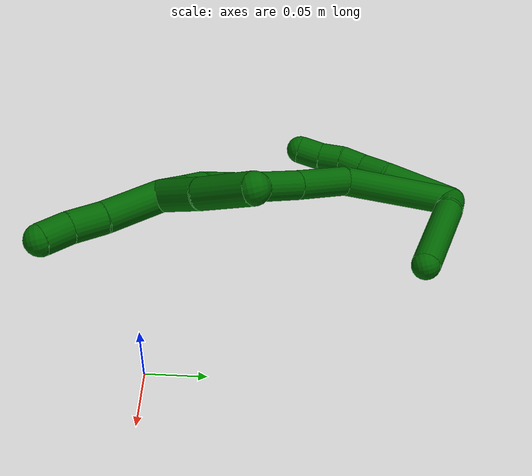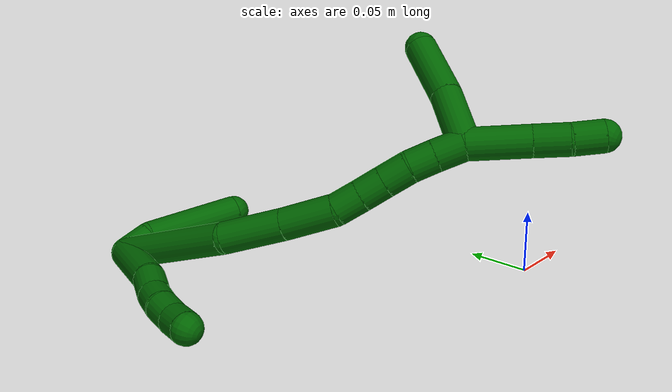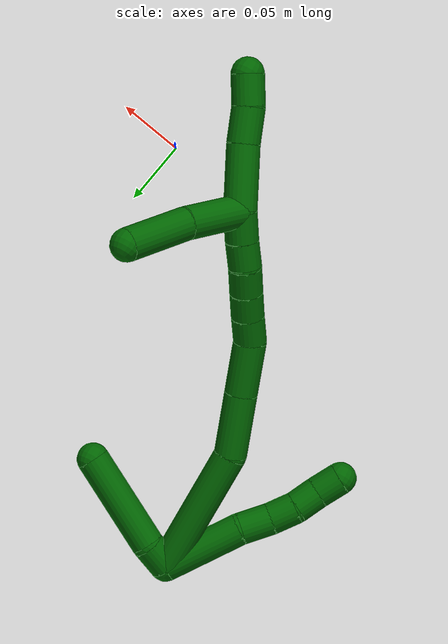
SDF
<sdf version="1.7">
 <world name="default">
  <model name="6">
   <static>0</static>
   <link name="6">
    <collision name="collision-cylinder-e_1_2_8">
     <pose>0.01806 0.007189 0.02486 -0.281494 0.609294 -0.089042</pose>
     <geometry><cylinder><radius>0.0125</radius><length>0.063115</length></cylinder></geometry>
     <surface>
      <friction><ode><mu>1.16</mu><mu2>1.16</mu2><slip1>0</slip1><slip2>0</slip2></ode></friction>
      <contact><ode><kp>1e+06</kp><kd>1</kd><max_vel>0</max_vel><min_depth>0.001</min_depth></ode></contact>
     </surface>
    </collision>
    <visual name="visual-cylinder-e_1_2_8">
     <pose>0.01806 0.007189 0.02486 -0.281494 0.609294 -0.089042</pose>
     <geometry><cylinder><radius>0.0125</radius><length>0.063115</length></cylinder></geometry>
     <material><ambient>0 0.392157 0.003922 1</ambient></material>
    </visual>
    <collision name="collision-cylinder-e_2_8_9">
     <pose>0.042402 0.01989 0.058797 -0.545742 0.53418 -0.152852</pose>
     <geometry><cylinder><radius>0.0125</radius><length>0.024676</length></cylinder></geometry>
     <surface>
      <friction><ode><mu>1.16</mu><mu2>1.16</mu2><slip1>0</slip1><slip2>0</slip2></ode></friction>
      <contact><ode><kp>1e+06</kp><kd>1</kd><max_vel>0</max_vel><min_depth>0.001</min_depth></ode></contact>
     </surface>
    </collision>
    <visual name="visual-cylinder-e_2_8_9">
     <pose>0.042402 0.01989 0.058797 -0.545742 0.53418 -0.152852</pose>
     <geometry><cylinder><radius>0.0125</radius><length>0.024676</length></cylinder></geometry>
     <material><ambient>0 0.392157 0.003922 1</ambient></material>
    </visual>
    <collision name="collision-cylinder-e_3_9_10">
     <pose>0.054729 0.028316 0.076092 -0.340802 0.606254 -0.107531</pose>
     <geometry><cylinder><radius>0.0125</radius><length>0.02122</length></cylinder></geometry>
     <surface>
      <friction><ode><mu>1.16</mu><mu2>1.16</mu2><slip1>0</slip1><slip2>0</slip2></ode></friction>
      <contact><ode><kp>1e+06</kp><kd>1</kd><max_vel>0</max_vel><min_depth>0.001</min_depth></ode></contact>
     </surface>
    </collision>
    <visual name="visual-cylinder-e_3_9_10">
     <pose>0.054729 0.028316 0.076092 -0.340802 0.606254 -0.107531</pose>
     <geometry><cylinder><radius>0.0125</radius><length>0.02122</length></cylinder></geometry>
     <material><ambient>0 0.392157 0.003922 1</ambient></material>
    </visual>
    <collision name="collision-cylinder-e_4_10_11">
     <pose>0.064737 0.033579 0.093316 -0.255078 0.402482 -0.052309</pose>
     <geometry><cylinder><radius>0.0125</radius><length>0.020232</length></cylinder></geometry>
     <surface>
      <friction><ode><mu>1.16</mu><mu2>1.16</mu2><slip1>0</slip1><slip2>0</slip2></ode></friction>
      <contact><ode><kp>1e+06</kp><kd>1</kd><max_vel>0</max_vel><min_depth>0.001</min_depth></ode></contact>
     </surface>
    </collision>
    <visual name="visual-cylinder-e_4_10_11">
     <pose>0.064737 0.033579 0.093316 -0.255078 0.402482 -0.052309</pose>
     <geometry><cylinder><radius>0.0125</radius><length>0.020232</length></cylinder></geometry>
     <material><ambient>0 0.392157 0.003922 1</ambient></material>
    </visual>
    <collision name="collision-cylinder-e_5_11_6">
     <pose>0.07427 0.037404 0.110954 -0.169381 0.566601 -0.04942</pose>
     <geometry><cylinder><radius>0.0125</radius><length>0.020756</length></cylinder></geometry>
     <surface>
      <friction><ode><mu>1.16</mu><mu2>1.16</mu2><slip1>0</slip1><slip2>0</slip2></ode></friction>
      <contact><ode><kp>1e+06</kp><kd>1</kd><max_vel>0</max_vel><min_depth>0.001</min_depth></ode></contact>
     </surface>
    </collision>
    <visual name="visual-cylinder-e_5_11_6">
     <pose>0.07427 0.037404 0.110954 -0.169381 0.566601 -0.04942</pose>
     <geometry><cylinder><radius>0.0125</radius><length>0.020756</length></cylinder></geometry>
     <material><ambient>0 0.392157 0.003922 1</ambient></material>
    </visual>
    <collision name="collision-cylinder-e_1_2_12">
     <pose>-0.003739 -0.010268 0.003022 1.28454 -0.336097 -0.252472</pose>
     <geometry><cylinder><radius>0.0125</radius><length>0.022677</length></cylinder></geometry>
     <surface>
      <friction><ode><mu>1.16</mu><mu2>1.16</mu2><slip1>0</slip1><slip2>0</slip2></ode></friction>
      <contact><ode><kp>1e+06</kp><kd>1</kd><max_vel>0</max_vel><min_depth>0.001</min_depth></ode></contact>
     </surface>
    </collision>
    <visual name="visual-cylinder-e_1_2_12">
     <pose>-0.003739 -0.010268 0.003022 1.28454 -0.336097 -0.252472</pose>
     <geometry><cylinder><radius>0.0125</radius><length>0.022677</length></cylinder></geometry>
     <material><ambient>0 0.392157 0.003922 1</ambient></material>
    </visual>
    <collision name="collision-cylinder-e_2_12_5">
     <pose>-0.027055 -0.049027 0.023359 1.02472 -0.530952 -0.303506</pose>
     <geometry><cylinder><radius>0.0125</radius><length>0.077323</length></cylinder></geometry>
     <surface>
      <friction><ode><mu>1.16</mu><mu2>1.16</mu2><slip1>0</slip1><slip2>0</slip2></ode></friction>
      <contact><ode><kp>1e+06</kp><kd>1</kd><max_vel>0</max_vel><min_depth>0.001</min_depth></ode></contact>
     </surface>
    </collision>
    <visual name="visual-cylinder-e_2_12_5">
     <pose>-0.027055 -0.049027 0.023359 1.02472 -0.530952 -0.303506</pose>
     <geometry><cylinder><radius>0.0125</radius><length>0.077323</length></cylinder></geometry>
     <material><ambient>0 0.392157 0.003922 1</ambient></material>
    </visual>
    <collision name="collision-cylinder-e_1_2_13">
     <pose>0.019363 -0.018523 0.044414 0.395125 0.382558 0.077487</pose>
     <geometry><cylinder><radius>0.0125</radius><length>0.103743</length></cylinder></geometry>
     <surface>
      <friction><ode><mu>1.16</mu><mu2>1.16</mu2><slip1>0</slip1><slip2>0</slip2></ode></friction>
      <contact><ode><kp>1e+06</kp><kd>1</kd><max_vel>0</max_vel><min_depth>0.001</min_depth></ode></contact>
     </surface>
    </collision>
    <visual name="visual-cylinder-e_1_2_13">
     <pose>0.019363 -0.018523 0.044414 0.395125 0.382558 0.077487</pose>
     <geometry><cylinder><radius>0.0125</radius><length>0.103743</length></cylinder></geometry>
     <material><ambient>0 0.392157 0.003922 1</ambient></material>
    </visual>
    <collision name="collision-cylinder-e_2_13_14">
     <pose>0.04129 -0.050871 0.109012 0.600535 0.104406 0.032354</pose>
     <geometry><cylinder><radius>0.0125</radius><length>0.049197</length></cylinder></geometry>
     <surface>
      <friction><ode><mu>1.16</mu><mu2>1.16</mu2><slip1>0</slip1><slip2>0</slip2></ode></friction>
      <contact><ode><kp>1e+06</kp><kd>1</kd><max_vel>0</max_vel><min_depth>0.001</min_depth></ode></contact>
     </surface>
    </collision>
    <visual name="visual-cylinder-e_2_13_14">
     <pose>0.04129 -0.050871 0.109012 0.600535 0.104406 0.032354</pose>
     <geometry><cylinder><radius>0.0125</radius><length>0.049197</length></cylinder></geometry>
     <material><ambient>0 0.392157 0.003922 1</ambient></material>
    </visual>
    <collision name="collision-cylinder-e_3_14_15">
     <pose>0.046647 -0.076844 0.145843 0.630428 0.134714 0.043988</pose>
     <geometry><cylinder><radius>0.0125</radius><length>0.041592</length></cylinder></geometry>
     <surface>
      <friction><ode><mu>1.16</mu><mu2>1.16</mu2><slip1>0</slip1><slip2>0</slip2></ode></friction>
      <contact><ode><kp>1e+06</kp><kd>1</kd><max_vel>0</max_vel><min_depth>0.001</min_depth></ode></contact>
     </surface>
    </collision>
    <visual name="visual-cylinder-e_3_14_15">
     <pose>0.046647 -0.076844 0.145843 0.630428 0.134714 0.043988</pose>
     <geometry><cylinder><radius>0.0125</radius><length>0.041592</length></cylinder></geometry>
     <material><ambient>0 0.392157 0.003922 1</ambient></material>
    </visual>
    <collision name="collision-cylinder-e_4_15_16">
     <pose>0.050346 -0.097465 0.168825 0.928736 0.085448 0.04282</pose>
     <geometry><cylinder><radius>0.0125</radius><length>0.021239</length></cylinder></geometry>
     <surface>
      <friction><ode><mu>1.16</mu><mu2>1.16</mu2><slip1>0</slip1><slip2>0</slip2></ode></friction>
      <contact><ode><kp>1e+06</kp><kd>1</kd><max_vel>0</max_vel><min_depth>0.001</min_depth></ode></contact>
     </surface>
    </collision>
    <visual name="visual-cylinder-e_4_15_16">
     <pose>0.050346 -0.097465 0.168825 0.928736 0.085448 0.04282</pose>
     <geometry><cylinder><radius>0.0125</radius><length>0.021239</length></cylinder></geometry>
     <material><ambient>0 0.392157 0.003922 1</ambient></material>
    </visual>
    <collision name="collision-cylinder-e_5_16_17">
     <pose>0.052493 -0.113912 0.181123 0.928748 0.123938 0.062141</pose>
     <geometry><cylinder><radius>0.0125</radius><length>0.020065</length></cylinder></geometry>
     <surface>
      <friction><ode><mu>1.16</mu><mu2>1.16</mu2><slip1>0</slip1><slip2>0</slip2></ode></friction>
      <contact><ode><kp>1e+06</kp><kd>1</kd><max_vel>0</max_vel><min_depth>0.001</min_depth></ode></contact>
     </surface>
    </collision>
    <visual name="visual-cylinder-e_5_16_17">
     <pose>0.052493 -0.113912 0.181123 0.928748 0.123938 0.062141</pose>
     <geometry><cylinder><radius>0.0125</radius><length>0.020065</length></cylinder></geometry>
     <material><ambient>0 0.392157 0.003922 1</ambient></material>
    </visual>
    <collision name="collision-cylinder-e_6_17_18">
     <pose>0.055083 -0.13018 0.193427 0.918039 0.128614 0.063631</pose>
     <geometry><cylinder><radius>0.0125</radius><length>0.021058</length></cylinder></geometry>
     <surface>
      <friction><ode><mu>1.16</mu><mu2>1.16</mu2><slip1>0</slip1><slip2>0</slip2></ode></friction>
      <contact><ode><kp>1e+06</kp><kd>1</kd><max_vel>0</max_vel><min_depth>0.001</min_depth></ode></contact>
     </surface>
    </collision>
    <visual name="visual-cylinder-e_6_17_18">
     <pose>0.055083 -0.13018 0.193427 0.918039 0.128614 0.063631</pose>
     <geometry><cylinder><radius>0.0125</radius><length>0.021058</length></cylinder></geometry>
     <material><ambient>0 0.392157 0.003922 1</ambient></material>
    </visual>
    <collision name="collision-cylinder-e_7_18_19">
     <pose>0.056184 -0.146185 0.206447 0.856978 -0.024494 -0.011189</pose>
     <geometry><cylinder><radius>0.0125</radius><length>0.020405</length></cylinder></geometry>
     <surface>
      <friction><ode><mu>1.16</mu><mu2>1.16</mu2><slip1>0</slip1><slip2>0</slip2></ode></friction>
      <contact><ode><kp>1e+06</kp><kd>1</kd><max_vel>0</max_vel><min_depth>0.001</min_depth></ode></contact>
     </surface>
    </collision>
    <visual name="visual-cylinder-e_7_18_19">
     <pose>0.056184 -0.146185 0.206447 0.856978 -0.024494 -0.011189</pose>
     <geometry><cylinder><radius>0.0125</radius><length>0.020405</length></cylinder></geometry>
     <material><ambient>0 0.392157 0.003922 1</ambient></material>
    </visual>
    <collision name="collision-cylinder-e_8_19_1">
     <pose>0.05594 -0.162095 0.220972 0.807369 0.000502 0.000214</pose>
     <geometry><cylinder><radius>0.0125</radius><length>0.022702</length></cylinder></geometry>
     <surface>
      <friction><ode><mu>1.16</mu><mu2>1.16</mu2><slip1>0</slip1><slip2>0</slip2></ode></friction>
      <contact><ode><kp>1e+06</kp><kd>1</kd><max_vel>0</max_vel><min_depth>0.001</min_depth></ode></contact>
     </surface>
    </collision>
    <visual name="visual-cylinder-e_8_19_1">
     <pose>0.05594 -0.162095 0.220972 0.807369 0.000502 0.000214</pose>
     <geometry><cylinder><radius>0.0125</radius><length>0.022702</length></cylinder></geometry>
     <material><ambient>0 0.392157 0.003922 1</ambient></material>
    </visual>
    <collision name="collision-cylinder-e_1_1_20">
     <pose>0.052408 -0.182151 0.249827 0.513819 -0.145632 -0.038323</pose>
     <geometry><cylinder><radius>0.0125</radius><length>0.048758</length></cylinder></geometry>
     <surface>
      <friction><ode><mu>1.16</mu><mu2>1.16</mu2><slip1>0</slip1><slip2>0</slip2></ode></friction>
      <contact><ode><kp>1e+06</kp><kd>1</kd><max_vel>0</max_vel><min_depth>0.001</min_depth></ode></contact>
     </surface>
    </collision>
    <visual name="visual-cylinder-e_1_1_20">
     <pose>0.052408 -0.182151 0.249827 0.513819 -0.145632 -0.038323</pose>
     <geometry><cylinder><radius>0.0125</radius><length>0.048758</length></cylinder></geometry>
     <material><ambient>0 0.392157 0.003922 1</ambient></material>
    </visual>
    <collision name="collision-cylinder-e_2_20_21">
     <pose>0.048027 -0.200154 0.283039 0.466554 -0.061573 -0.014634</pose>
     <geometry><cylinder><radius>0.0125</radius><length>0.027384</length></cylinder></geometry>
     <surface>
      <friction><ode><mu>1.16</mu><mu2>1.16</mu2><slip1>0</slip1><slip2>0</slip2></ode></friction>
      <contact><ode><kp>1e+06</kp><kd>1</kd><max_vel>0</max_vel><min_depth>0.001</min_depth></ode></contact>
     </surface>
    </collision>
    <visual name="visual-cylinder-e_2_20_21">
     <pose>0.048027 -0.200154 0.283039 0.466554 -0.061573 -0.014634</pose>
     <geometry><cylinder><radius>0.0125</radius><length>0.027384</length></cylinder></geometry>
     <material><ambient>0 0.392157 0.003922 1</ambient></material>
    </visual>
    <collision name="collision-cylinder-e_3_21_4">
     <pose>0.045096 -0.212829 0.305008 0.58936 -0.175997 -0.053543</pose>
     <geometry><cylinder><radius>0.0125</radius><length>0.023858</length></cylinder></geometry>
     <surface>
      <friction><ode><mu>1.16</mu><mu2>1.16</mu2><slip1>0</slip1><slip2>0</slip2></ode></friction>
      <contact><ode><kp>1e+06</kp><kd>1</kd><max_vel>0</max_vel><min_depth>0.001</min_depth></ode></contact>
     </surface>
    </collision>
    <visual name="visual-cylinder-e_3_21_4">
     <pose>0.045096 -0.212829 0.305008 0.58936 -0.175997 -0.053543</pose>
     <geometry><cylinder><radius>0.0125</radius><length>0.023858</length></cylinder></geometry>
     <material><ambient>0 0.392157 0.003922 1</ambient></material>
    </visual>
    <collision name="collision-cylinder-e_1_1_22">
     <pose>0.052067 -0.187202 0.212376 2.34235 -0.162975 -0.38202</pose>
     <geometry><cylinder><radius>0.0125</radius><length>0.047804</length></cylinder></geometry>
     <surface>
      <friction><ode><mu>1.16</mu><mu2>1.16</mu2><slip1>0</slip1><slip2>0</slip2></ode></friction>
      <contact><ode><kp>1e+06</kp><kd>1</kd><max_vel>0</max_vel><min_depth>0.001</min_depth></ode></contact>
     </surface>
    </collision>
    <visual name="visual-cylinder-e_1_1_22">
     <pose>0.052067 -0.187202 0.212376 2.34235 -0.162975 -0.38202</pose>
     <geometry><cylinder><radius>0.0125</radius><length>0.047804</length></cylinder></geometry>
     <material><ambient>0 0.392157 0.003922 1</ambient></material>
    </visual>
    <collision name="collision-cylinder-e_2_22_3">
     <pose>0.044588 -0.220627 0.176049 2.44832 -0.138416 -0.379193</pose>
     <geometry><cylinder><radius>0.0125</radius><length>0.052196</length></cylinder></geometry>
     <surface>
      <friction><ode><mu>1.16</mu><mu2>1.16</mu2><slip1>0</slip1><slip2>0</slip2></ode></friction>
      <contact><ode><kp>1e+06</kp><kd>1</kd><max_vel>0</max_vel><min_depth>0.001</min_depth></ode></contact>
     </surface>
    </collision>
    <visual name="visual-cylinder-e_2_22_3">
     <pose>0.044588 -0.220627 0.176049 2.44832 -0.138416 -0.379193</pose>
     <geometry><cylinder><radius>0.0125</radius><length>0.052196</length></cylinder></geometry>
     <material><ambient>0 0.392157 0.003922 1</ambient></material>
    </visual>
    <collision name="collision-sphere-3">
     <pose>0.040987 -0.237146 0.156168 0 -0 0</pose>
     <geometry><sphere><radius>0.0125</radius></sphere></geometry>
     <surface>
      <friction><ode><mu>1.16</mu><mu2>1.16</mu2><slip1>0</slip1><slip2>0</slip2></ode></friction>
      <contact><ode><kp>1e+06</kp><kd>1</kd><max_vel>0</max_vel><min_depth>0.001</min_depth></ode></contact>
     </surface>
    </collision>
    <visual name="visual-sphere-3">
     <pose>0.040987 -0.237146 0.156168 0 -0 0</pose>
     <geometry><sphere><radius>0.0125</radius></sphere></geometry>
     <material><ambient>0 0.392157 0.003922 1</ambient></material>
    </visual>
    <collision name="collision-sphere-22">
     <pose>0.048189 -0.204109 0.195931 0 -0 0</pose>
     <geometry><sphere><radius>0.0125</radius></sphere></geometry>
     <surface>
      <friction><ode><mu>1.16</mu><mu2>1.16</mu2><slip1>0</slip1><slip2>0</slip2></ode></friction>
      <contact><ode><kp>1e+06</kp><kd>1</kd><max_vel>0</max_vel><min_depth>0.001</min_depth></ode></contact>
     </surface>
    </collision>
    <visual name="visual-sphere-22">
     <pose>0.048189 -0.204109 0.195931 0 -0 0</pose>
     <geometry><sphere><radius>0.0125</radius></sphere></geometry>
     <material><ambient>0 0.392157 0.003922 1</ambient></material>
    </visual>
    <collision name="collision-sphere-4">
     <pose>0.043008 -0.219357 0.314771 0 -0 0</pose>
     <geometry><sphere><radius>0.0125</radius></sphere></geometry>
     <surface>
      <friction><ode><mu>1.16</mu><mu2>1.16</mu2><slip1>0</slip1><slip2>0</slip2></ode></friction>
      <contact><ode><kp>1e+06</kp><kd>1</kd><max_vel>0</max_vel><min_depth>0.001</min_depth></ode></contact>
     </surface>
    </collision>
    <visual name="visual-sphere-4">
     <pose>0.043008 -0.219357 0.314771 0 -0 0</pose>
     <geometry><sphere><radius>0.0125</radius></sphere></geometry>
     <material><ambient>0 0.392157 0.003922 1</ambient></material>
    </visual>
    <collision name="collision-sphere-21">
     <pose>0.047185 -0.206301 0.295244 0 -0 0</pose>
     <geometry><sphere><radius>0.0125</radius></sphere></geometry>
     <surface>
      <friction><ode><mu>1.16</mu><mu2>1.16</mu2><slip1>0</slip1><slip2>0</slip2></ode></friction>
      <contact><ode><kp>1e+06</kp><kd>1</kd><max_vel>0</max_vel><min_depth>0.001</min_depth></ode></contact>
     </surface>
    </collision>
    <visual name="visual-sphere-21">
     <pose>0.047185 -0.206301 0.295244 0 -0 0</pose>
     <geometry><sphere><radius>0.0125</radius></sphere></geometry>
     <material><ambient>0 0.392157 0.003922 1</ambient></material>
    </visual>
    <collision name="collision-sphere-20">
     <pose>0.04887 -0.194007 0.270833 0 -0 0</pose>
     <geometry><sphere><radius>0.0125</radius></sphere></geometry>
     <surface>
      <friction><ode><mu>1.16</mu><mu2>1.16</mu2><slip1>0</slip1><slip2>0</slip2></ode></friction>
      <contact><ode><kp>1e+06</kp><kd>1</kd><max_vel>0</max_vel><min_depth>0.001</min_depth></ode></contact>
     </surface>
    </collision>
    <visual name="visual-sphere-20">
     <pose>0.04887 -0.194007 0.270833 0 -0 0</pose>
     <geometry><sphere><radius>0.0125</radius></sphere></geometry>
     <material><ambient>0 0.392157 0.003922 1</ambient></material>
    </visual>
    <collision name="collision-sphere-6">
     <pose>0.079841 0.03888 0.119585 0 -0 0</pose>
     <geometry><sphere><radius>0.0125</radius></sphere></geometry>
     <surface>
      <friction><ode><mu>1.16</mu><mu2>1.16</mu2><slip1>0</slip1><slip2>0</slip2></ode></friction>
      <contact><ode><kp>1e+06</kp><kd>1</kd><max_vel>0</max_vel><min_depth>0.001</min_depth></ode></contact>
     </surface>
    </collision>
    <visual name="visual-sphere-6">
     <pose>0.079841 0.03888 0.119585 0 -0 0</pose>
     <geometry><sphere><radius>0.0125</radius></sphere></geometry>
     <material><ambient>0 0.392157 0.003922 1</ambient></material>
    </visual>
    <collision name="collision-sphere-11">
     <pose>0.0687 0.035927 0.102323 0 -0 0</pose>
     <geometry><sphere><radius>0.0125</radius></sphere></geometry>
     <surface>
      <friction><ode><mu>1.16</mu><mu2>1.16</mu2><slip1>0</slip1><slip2>0</slip2></ode></friction>
      <contact><ode><kp>1e+06</kp><kd>1</kd><max_vel>0</max_vel><min_depth>0.001</min_depth></ode></contact>
     </surface>
    </collision>
    <visual name="visual-sphere-11">
     <pose>0.0687 0.035927 0.102323 0 -0 0</pose>
     <geometry><sphere><radius>0.0125</radius></sphere></geometry>
     <material><ambient>0 0.392157 0.003922 1</ambient></material>
    </visual>
    <collision name="collision-sphere-10">
     <pose>0.060775 0.03123 0.08431 0 -0 0</pose>
     <geometry><sphere><radius>0.0125</radius></sphere></geometry>
     <surface>
      <friction><ode><mu>1.16</mu><mu2>1.16</mu2><slip1>0</slip1><slip2>0</slip2></ode></friction>
      <contact><ode><kp>1e+06</kp><kd>1</kd><max_vel>0</max_vel><min_depth>0.001</min_depth></ode></contact>
     </surface>
    </collision>
    <visual name="visual-sphere-10">
     <pose>0.060775 0.03123 0.08431 0 -0 0</pose>
     <geometry><sphere><radius>0.0125</radius></sphere></geometry>
     <material><ambient>0 0.392157 0.003922 1</ambient></material>
    </visual>
    <collision name="collision-sphere-9">
     <pose>0.048684 0.025402 0.067874 0 -0 0</pose>
     <geometry><sphere><radius>0.0125</radius></sphere></geometry>
     <surface>
      <friction><ode><mu>1.16</mu><mu2>1.16</mu2><slip1>0</slip1><slip2>0</slip2></ode></friction>
      <contact><ode><kp>1e+06</kp><kd>1</kd><max_vel>0</max_vel><min_depth>0.001</min_depth></ode></contact>
     </surface>
    </collision>
    <visual name="visual-sphere-9">
     <pose>0.048684 0.025402 0.067874 0 -0 0</pose>
     <geometry><sphere><radius>0.0125</radius></sphere></geometry>
     <material><ambient>0 0.392157 0.003922 1</ambient></material>
    </visual>
    <collision name="collision-sphere-2">
     <geometry><sphere><radius>0.0125</radius></sphere></geometry>
     <surface>
      <friction><ode><mu>1.16</mu><mu2>1.16</mu2><slip1>0</slip1><slip2>0</slip2></ode></friction>
      <contact><ode><kp>1e+06</kp><kd>1</kd><max_vel>0</max_vel><min_depth>0.001</min_depth></ode></contact>
     </surface>
    </collision>
    <visual name="visual-sphere-2">
     <geometry><sphere><radius>0.0125</radius></sphere></geometry>
     <material><ambient>0 0.392157 0.003922 1</ambient></material>
    </visual>
    <collision name="collision-sphere-19">
     <pose>0.055934 -0.153894 0.213124 0 -0 0</pose>
     <geometry><sphere><radius>0.0125</radius></sphere></geometry>
     <surface>
      <friction><ode><mu>1.16</mu><mu2>1.16</mu2><slip1>0</slip1><slip2>0</slip2></ode></friction>
      <contact><ode><kp>1e+06</kp><kd>1</kd><max_vel>0</max_vel><min_depth>0.001</min_depth></ode></contact>
     </surface>
    </collision>
    <visual name="visual-sphere-19">
     <pose>0.055934 -0.153894 0.213124 0 -0 0</pose>
     <geometry><sphere><radius>0.0125</radius></sphere></geometry>
     <material><ambient>0 0.392157 0.003922 1</ambient></material>
    </visual>
    <collision name="collision-sphere-8">
     <pose>0.03612 0.014378 0.049721 0 -0 0</pose>
     <geometry><sphere><radius>0.0125</radius></sphere></geometry>
     <surface>
      <friction><ode><mu>1.16</mu><mu2>1.16</mu2><slip1>0</slip1><slip2>0</slip2></ode></friction>
      <contact><ode><kp>1e+06</kp><kd>1</kd><max_vel>0</max_vel><min_depth>0.001</min_depth></ode></contact>
     </surface>
    </collision>
    <visual name="visual-sphere-8">
     <pose>0.03612 0.014378 0.049721 0 -0 0</pose>
     <geometry><sphere><radius>0.0125</radius></sphere></geometry>
     <material><ambient>0 0.392157 0.003922 1</ambient></material>
    </visual>
    <collision name="collision-sphere-12">
     <pose>-0.007479 -0.020537 0.006045 0 -0 0</pose>
     <geometry><sphere><radius>0.0125</radius></sphere></geometry>
     <surface>
      <friction><ode><mu>1.16</mu><mu2>1.16</mu2><slip1>0</slip1><slip2>0</slip2></ode></friction>
      <contact><ode><kp>1e+06</kp><kd>1</kd><max_vel>0</max_vel><min_depth>0.001</min_depth></ode></contact>
     </surface>
    </collision>
    <visual name="visual-sphere-12">
     <pose>-0.007479 -0.020537 0.006045 0 -0 0</pose>
     <geometry><sphere><radius>0.0125</radius></sphere></geometry>
     <material><ambient>0 0.392157 0.003922 1</ambient></material>
    </visual>
    <collision name="collision-sphere-5">
     <pose>-0.046632 -0.077517 0.040673 0 -0 0</pose>
     <geometry><sphere><radius>0.0125</radius></sphere></geometry>
     <surface>
      <friction><ode><mu>1.16</mu><mu2>1.16</mu2><slip1>0</slip1><slip2>0</slip2></ode></friction>
      <contact><ode><kp>1e+06</kp><kd>1</kd><max_vel>0</max_vel><min_depth>0.001</min_depth></ode></contact>
     </surface>
    </collision>
    <visual name="visual-sphere-5">
     <pose>-0.046632 -0.077517 0.040673 0 -0 0</pose>
     <geometry><sphere><radius>0.0125</radius></sphere></geometry>
     <material><ambient>0 0.392157 0.003922 1</ambient></material>
    </visual>
    <collision name="collision-sphere-13">
     <pose>0.038727 -0.037046 0.088828 0 -0 0</pose>
     <geometry><sphere><radius>0.0125</radius></sphere></geometry>
     <surface>
      <friction><ode><mu>1.16</mu><mu2>1.16</mu2><slip1>0</slip1><slip2>0</slip2></ode></friction>
      <contact><ode><kp>1e+06</kp><kd>1</kd><max_vel>0</max_vel><min_depth>0.001</min_depth></ode></contact>
     </surface>
    </collision>
    <visual name="visual-sphere-13">
     <pose>0.038727 -0.037046 0.088828 0 -0 0</pose>
     <geometry><sphere><radius>0.0125</radius></sphere></geometry>
     <material><ambient>0 0.392157 0.003922 1</ambient></material>
    </visual>
    <collision name="collision-sphere-14">
     <pose>0.043854 -0.064696 0.129196 0 -0 0</pose>
     <geometry><sphere><radius>0.0125</radius></sphere></geometry>
     <surface>
      <friction><ode><mu>1.16</mu><mu2>1.16</mu2><slip1>0</slip1><slip2>0</slip2></ode></friction>
      <contact><ode><kp>1e+06</kp><kd>1</kd><max_vel>0</max_vel><min_depth>0.001</min_depth></ode></contact>
     </surface>
    </collision>
    <visual name="visual-sphere-14">
     <pose>0.043854 -0.064696 0.129196 0 -0 0</pose>
     <geometry><sphere><radius>0.0125</radius></sphere></geometry>
     <material><ambient>0 0.392157 0.003922 1</ambient></material>
    </visual>
    <collision name="collision-sphere-15">
     <pose>0.04944 -0.088991 0.162489 0 -0 0</pose>
     <geometry><sphere><radius>0.0125</radius></sphere></geometry>
     <surface>
      <friction><ode><mu>1.16</mu><mu2>1.16</mu2><slip1>0</slip1><slip2>0</slip2></ode></friction>
      <contact><ode><kp>1e+06</kp><kd>1</kd><max_vel>0</max_vel><min_depth>0.001</min_depth></ode></contact>
     </surface>
    </collision>
    <visual name="visual-sphere-15">
     <pose>0.04944 -0.088991 0.162489 0 -0 0</pose>
     <geometry><sphere><radius>0.0125</radius></sphere></geometry>
     <material><ambient>0 0.392157 0.003922 1</ambient></material>
    </visual>
    <collision name="collision-sphere-16">
     <pose>0.051253 -0.105939 0.175161 0 -0 0</pose>
     <geometry><sphere><radius>0.0125</radius></sphere></geometry>
     <surface>
      <friction><ode><mu>1.16</mu><mu2>1.16</mu2><slip1>0</slip1><slip2>0</slip2></ode></friction>
      <contact><ode><kp>1e+06</kp><kd>1</kd><max_vel>0</max_vel><min_depth>0.001</min_depth></ode></contact>
     </surface>
    </collision>
    <visual name="visual-sphere-16">
     <pose>0.051253 -0.105939 0.175161 0 -0 0</pose>
     <geometry><sphere><radius>0.0125</radius></sphere></geometry>
     <material><ambient>0 0.392157 0.003922 1</ambient></material>
    </visual>
    <collision name="collision-sphere-17">
     <pose>0.053733 -0.121885 0.187085 0 -0 0</pose>
     <geometry><sphere><radius>0.0125</radius></sphere></geometry>
     <surface>
      <friction><ode><mu>1.16</mu><mu2>1.16</mu2><slip1>0</slip1><slip2>0</slip2></ode></friction>
      <contact><ode><kp>1e+06</kp><kd>1</kd><max_vel>0</max_vel><min_depth>0.001</min_depth></ode></contact>
     </surface>
    </collision>
    <visual name="visual-sphere-17">
     <pose>0.053733 -0.121885 0.187085 0 -0 0</pose>
     <geometry><sphere><radius>0.0125</radius></sphere></geometry>
     <material><ambient>0 0.392157 0.003922 1</ambient></material>
    </visual>
    <collision name="collision-sphere-18">
     <pose>0.056434 -0.138475 0.199769 0 -0 0</pose>
     <geometry><sphere><radius>0.0125</radius></sphere></geometry>
     <surface>
      <friction><ode><mu>1.16</mu><mu2>1.16</mu2><slip1>0</slip1><slip2>0</slip2></ode></friction>
      <contact><ode><kp>1e+06</kp><kd>1</kd><max_vel>0</max_vel><min_depth>0.001</min_depth></ode></contact>
     </surface>
    </collision>
    <visual name="visual-sphere-18">
     <pose>0.056434 -0.138475 0.199769 0 -0 0</pose>
     <geometry><sphere><radius>0.0125</radius></sphere></geometry>
     <material><ambient>0 0.392157 0.003922 1</ambient></material>
    </visual>
    <collision name="collision-sphere-1">
     <pose>0.055945 -0.170295 0.22882 0 -0 0</pose>
     <geometry><sphere><radius>0.0125</radius></sphere></geometry>
     <surface>
      <friction><ode><mu>1.16</mu><mu2>1.16</mu2><slip1>0</slip1><slip2>0</slip2></ode></friction>
      <contact><ode><kp>1e+06</kp><kd>1</kd><max_vel>0</max_vel><min_depth>0.001</min_depth></ode></contact>
     </surface>
    </collision>
    <visual name="visual-sphere-1">
     <pose>0.055945 -0.170295 0.22882 0 -0 0</pose>
     <geometry><sphere><radius>0.0125</radius></sphere></geometry>
     <material><ambient>0 0.392157 0.003922 1</ambient></material>
    </visual>
    <inertial>
     <pose>0.033952 -0.083077 0.125079 0 -0 0</pose>
     <mass>0.75</mass>
     <inertia>
      <ixx>0.000207</ixx>
      <ixy>0</ixy>
      <ixz>0</ixz>
      <iyy>0.000125</iyy>
      <iyz>0</iyz>
      <izz>0.000105</izz>
     </inertia>
    </inertial>
   </link>
   <pose>-0.19965 0.250517 0.01191 -1.85141 -0.750132 -2.75779</pose>
  </model>
 </world>
</sdf>
